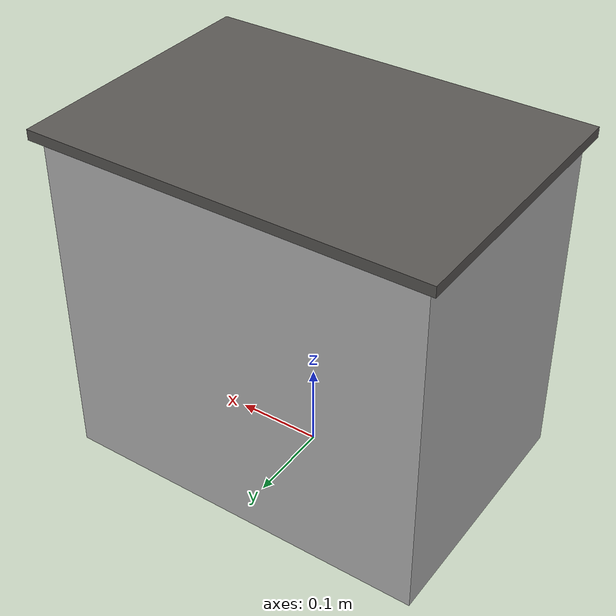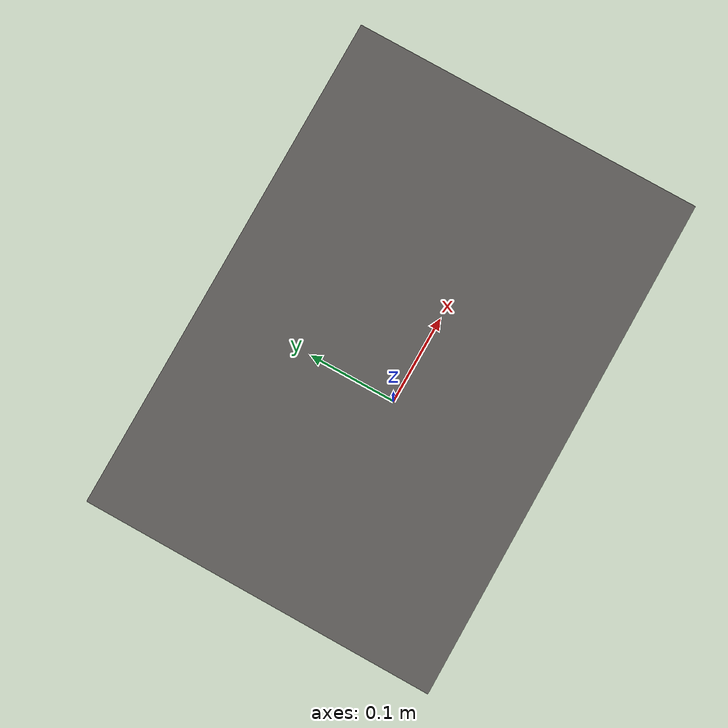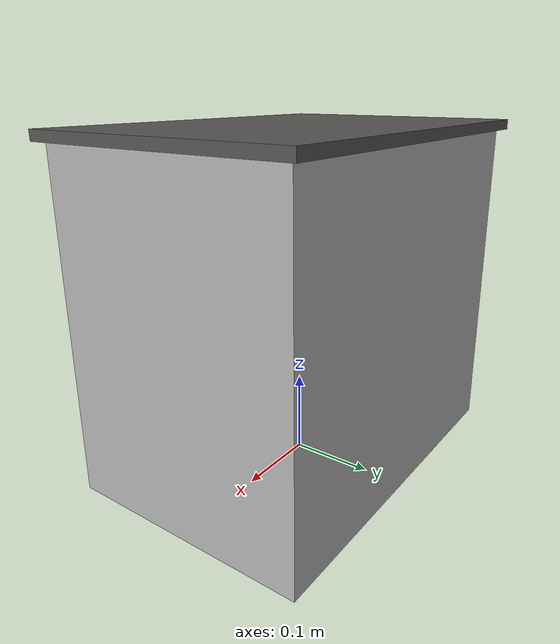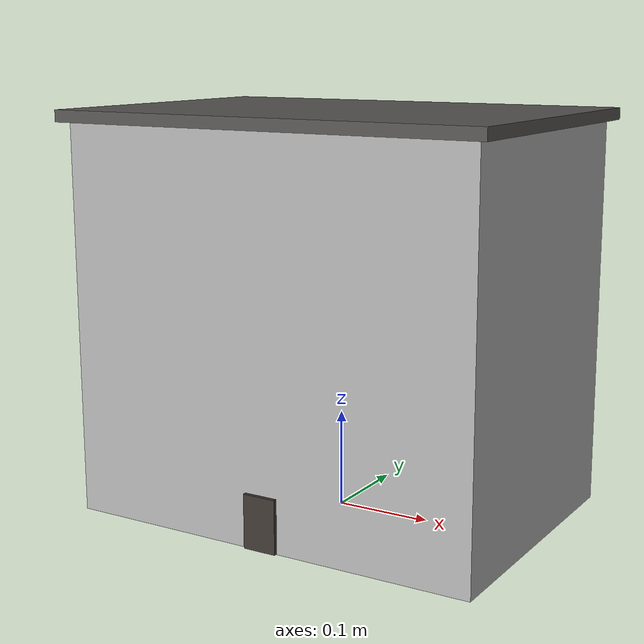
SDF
<?xml version="1.0"?>
<sdf version="1.7">
  <model name="bldg_c">
    <static>true</static>
    <link name="link">
<visual name="mass"><pose>0 0 0.2000 0 0 0</pose><geometry><box><size>0.440 0.300 0.400</size></box></geometry><material><script><uri>model://bldg_c/materials/scripts</uri><uri>model://bldg_c/materials/textures</uri><name>BldgFacade</name></script></material></visual>
      <collision name="mass_c_c"><pose>0 0 0.2000 0 0 0</pose><geometry><box><size>0.440 0.300 0.400</size></box></geometry></collision>
      <visual name="roof"><pose>0 0 0.4060 0 0 0</pose><geometry><box><size>0.460 0.320 0.012</size></box></geometry><material><ambient>0.35 0.34 0.33 1</ambient><diffuse>0.35 0.34 0.33 1</diffuse></material></visual>
      <visual name="door"><pose>0 -0.1520 0.0280 0 0 0</pose><geometry><box><size>0.035 0.004 0.055</size></box></geometry><material><ambient>0.25 0.22 0.20 1</ambient><diffuse>0.25 0.22 0.20 1</diffuse></material></visual>
    </link>
  </model>
</sdf>
